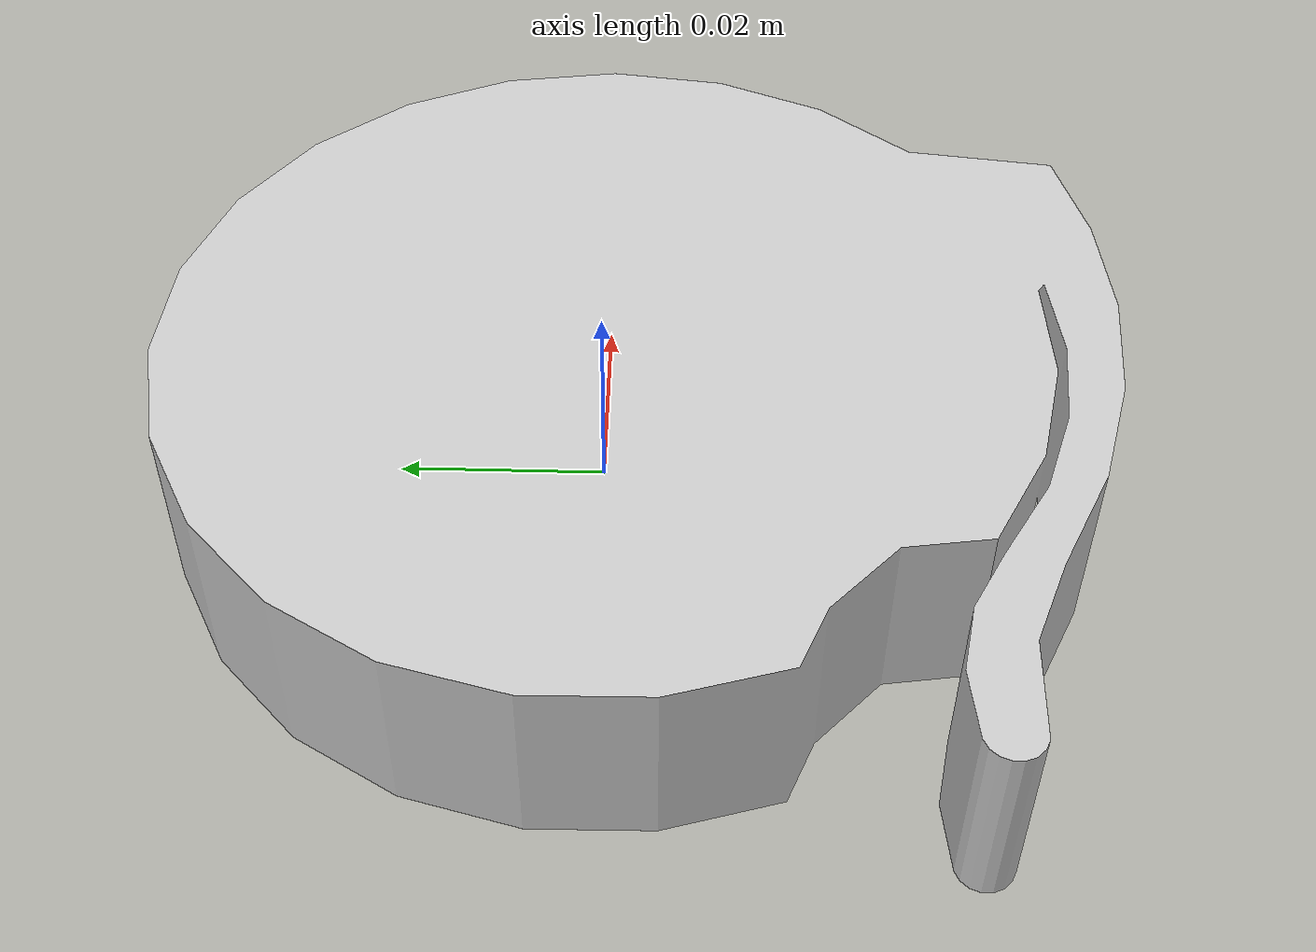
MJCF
<mujoco model="mtc_robot_side">
  <default>
    <default class="visual">
      <geom group="2" type="mesh" contype="0" conaffinity="0"/>
    </default>
    <default class="collision">
      <geom group="3" type="mesh"/>
    </default>
  </default>
  <asset>
    <material name="material_mtc_robot_side_0" specular="0.20000000000000004" shininess="1.0" rgba="0.80000000 0.80000000 0.80000000 1.0"/>
    <mesh file="mtc_robot_side.obj"/>
  </asset>
  <worldbody>
    <body name="mtc_robot_side">
      <geom material="material_mtc_robot_side_0" mesh="mtc_robot_side" class="visual"/>
      <geom mesh="mtc_robot_side" class="collision"/>
    </body>
  </worldbody>
</mujoco>
